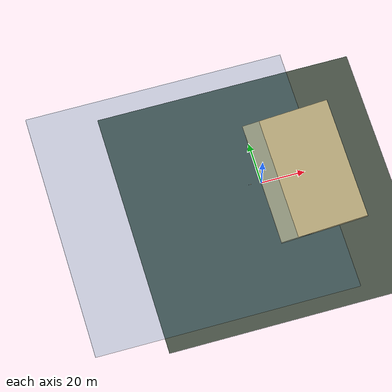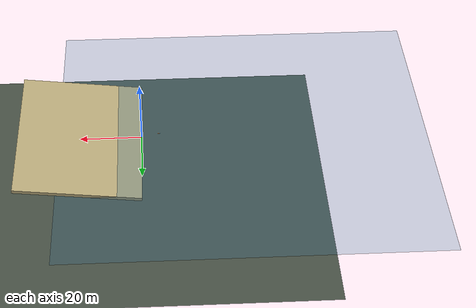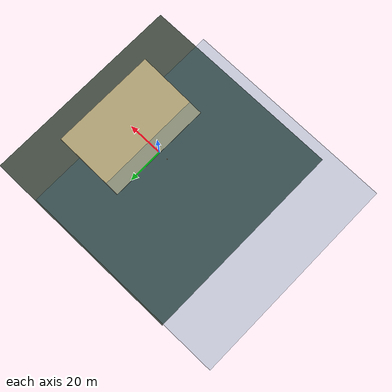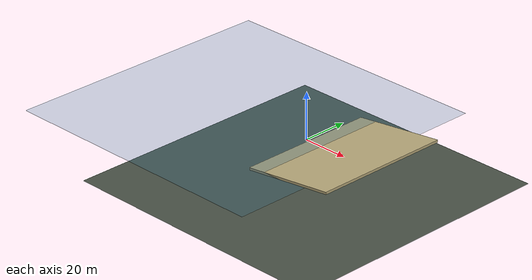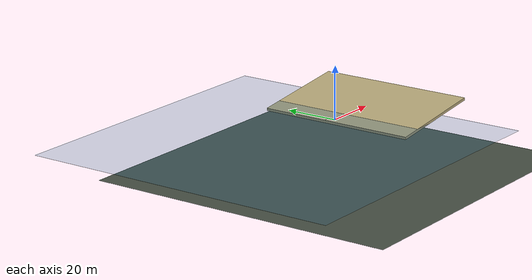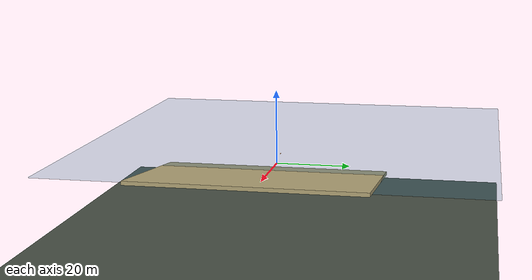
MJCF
<mujoco model="dytiscidae"><option timestep="0.004" gravity="0 0 -9.80665" density="0" viscosity="0" integrator="implicitfast" cone="elliptic" /><compiler angle="radian" autolimits="true" /><visual><global offwidth="1280" offheight="800" /><quality shadowsize="2048" offsamples="4" /><map znear="0.02" zfar="80" /><headlight ambient="0.45 0.46 0.48" diffuse="0.55 0.55 0.55" specular="0.15 0.15 0.15" /></visual><default><geom friction="0.9 0.02 0.001" condim="4" solref="0.008 1" margin="0.001" contype="1" conaffinity="2" /><joint damping="0.05" armature="0.002" limited="true" /></default><asset><texture type="skybox" builtin="gradient" rgb1="0.5 0.7 0.9" rgb2="0.05 0.1 0.2" width="256" height="256" /><texture name="grid" type="2d" builtin="checker" rgb1="0.25 0.28 0.24" rgb2="0.3 0.34 0.29" width="300" height="300" /><material name="seabed" texture="grid" texrepeat="20 20" reflectance="0.05" /><material name="beach" rgba="0.72 0.66 0.48 1" /><material name="water" rgba="0.15 0.4 0.55 0.25" /><mesh name="m0" vertex="-0.0066314 -0.031108 -0.01887 0.0066314 -0.031108 -0.01887 0.0066314 -0.031108 -0.0056069 -0.0066314 -0.031108 -0.0066314 -0.0066314 -0.031108 0.01887 -0.0066314 -0.01887 -0.031108 -0.0066314 -0.0056069 -0.031108 -0.0066314 -0.0056069 -0.017845 -0.0066314 -0.01887 0.0066314 -0.0066314 -0.01887 0.031108 0.0066314 -0.01887 0.031108 -0.0066314 0.0066314 -0.01887 -0.0066314 0.0066314 0.0066314 -0.0066314 0.0066314 0.031108 -0.0066314 0.0056069 -0.031108 -0.0066314 0.01887 -0.031108 0.0066314 0.01887 -0.031108 -0.0066314 0.0056069 -0.0066314 -0.0066314 0.0056069 0.031108 -0.0066314 0.01887 0.017845 -0.0066314 0.01887 0.031108 -0.0066314 0.031108 -0.01887 -0.0066314 0.031108 -0.0066314 -0.0066314 0.031108 0.0066314 -0.0066314 0.031108 0.0056069 -0.0066314 0.031108 0.01887 0.022207 -0.031108 -0.01887 0.0089447 -0.01887 -0.031108 0.022207 -0.01887 -0.031108 0.0089447 -0.01887 0.031108 0.022207 -0.01887 0.031108 0.0089447 0.0066314 0.031108 0.0089447 0.0056069 -0.031108 0.0089447 0.01887 -0.031108 0.022207 0.01887 -0.031108 0.0089447 0.01887 0.031108 0.022207 0.01887 0.031108 0.0089447 0.031108 -0.01887 0.0089447 0.031108 -0.0066314 0.0089447 0.031108 0.0056069 0.022207 0.031108 0.01887 0.037783 -0.031108 -0.01887 0.037783 -0.031108 0.0066314 0.024521 -0.031108 0.01887 0.037783 -0.031108 0.0056069 0.037783 -0.031108 0.01887 0.024521 -0.01887 -0.031108 0.037783 -0.01887 -0.031108 0.037783 -0.01887 -0.01887 0.024521 -0.01887 0.031108 0.024521 -0.0056069 0.031108 0.037783 -0.01887 0.031108 0.037783 -0.0056069 0.031108 0.037783 -0.0066314 -0.031108 0.037783 0.0066314 -0.031108 0.037783 -0.0066314 0.017845 0.037783 -0.0066314 0.031108 0.037783 0.01887 -0.031108 0.037783 0.0056069 0.0066314 0.024521 0.01887 0.031108 0.037783 0.0056069 0.031108 0.037783 0.01887 0.017845 0.037783 0.01887 0.031108 0.024521 0.031108 -0.01887 0.037783 0.031108 -0.01887 0.037783 0.031108 0.0066314 0.024521 0.031108 0.01887 0.037783 0.031108 0.0056069 0.037783 0.031108 0.01887" face="67 65 64 43 4 2 51 45 56 51 43 45 28 26 41 47 28 41 44 43 45 44 41 2 44 43 2 19 9 12 19 20 9 19 20 25 19 25 23 22 25 23 33 32 15 33 34 32 57 37 64 57 37 15 57 34 32 8 9 12 8 7 12 21 22 23 21 37 15 21 22 37 6 32 27 6 32 15 0 8 7 0 4 9 0 8 9 42 45 56 42 44 45 42 47 48 42 47 41 42 44 41 30 51 56 30 29 56 63 65 64 63 37 64 53 57 64 53 64 58 53 47 48 53 42 58 53 42 48 16 33 34 16 57 34 16 33 15 16 57 15 5 6 27 3 4 2 3 0 4 55 42 58 55 42 56 49 51 43 49 30 51 10 13 9 10 13 29 10 49 43 10 30 29 10 49 30 10 4 9 10 43 4 18 20 9 18 13 9 18 13 20 31 13 29 61 62 56 61 67 65 61 55 58 61 55 56 61 64 58 61 67 64 24 19 23 24 11 19 24 21 23 24 11 21 17 19 12 17 11 19 17 7 12 17 11 7 14 11 7 14 0 7 14 6 15 14 5 6 14 5 0 14 21 15 14 11 21 39 22 25 59 40 62 54 53 57 54 53 47 54 32 27 54 57 32 1 41 2 1 3 2 1 3 0 1 26 41 1 28 27 1 28 26 1 5 27 1 5 0 60 62 56 35 13 20 35 31 13 35 20 25 35 60 31 35 40 25 35 59 40 35 60 62 68 61 65 68 61 62 68 40 62 38 63 37 38 39 63 38 22 37 38 39 22 66 40 25 66 39 25 66 39 63 66 63 65 66 68 65 66 68 40 46 28 27 46 54 27 46 47 28 46 54 47 50 31 29 50 60 31 36 59 62 36 35 62 36 35 59 52 60 56 52 50 60 52 29 56 52 50 29" /><mesh name="m1" vertex="0.040097 -0.031108 -0.01887 0.040097 -0.031108 -0.0056069 0.040097 -0.017845 -0.01887 0.05336 -0.031108 -0.01887 0.040097 -0.031108 -0.0066314 0.040097 -0.031108 0.0066314 0.05336 -0.031108 -0.0066314 0.040097 -0.031108 0.01887 0.05336 -0.031108 0.01887 0.040097 -0.01887 -0.031108 0.040097 -0.0056069 -0.031108 0.05336 -0.0056069 -0.031108 0.040097 -0.01887 0.031108 0.05336 -0.01887 0.031108 0.040097 -0.0066314 -0.031108 0.040097 0.0066314 0.031108 0.040097 0.0056069 -0.031108 0.040097 0.01887 -0.031108 0.040097 0.01887 0.031108 0.05336 0.01887 0.031108 0.040097 0.031108 -0.01887 0.040097 0.031108 -0.0056069 0.040097 0.031108 -0.0066314 0.040097 0.031108 0.01887 0.055673 -0.031108 -0.01887 0.068936 -0.031108 0.01887 0.055673 -0.01887 -0.031108 0.068936 -0.01887 -0.031108 0.055673 -0.0066314 -0.031108 0.068936 0.0066314 -0.031108 0.055673 0.0066314 0.031108 0.068936 0.0066314 0.031108 0.055673 0.01887 -0.031108 0.068936 0.031108 -0.01887 0.055673 0.031108 -0.0066314 0.055673 0.031108 0.01887 0.068936 0.031108 0.01887 0.071249 -0.031108 -0.01887 0.084512 -0.031108 -0.01887 0.071249 -0.031108 0.0066314 0.084512 -0.031108 -0.0066314 0.084512 -0.031108 0.0066314 0.084512 -0.031108 0.01887 0.084512 -0.017845 0.01887 0.084512 -0.01887 -0.031108 0.084512 -0.0056069 -0.01887 0.084512 -0.01887 0.031108 0.084512 -0.0056069 0.031108 0.071249 0.01887 -0.031108 0.084512 0.0056069 -0.031108 0.084512 0.01887 -0.031108 0.084512 0.01887 -0.0066314 0.084512 0.0056069 0.01887 0.071249 0.01887 0.031108 0.084512 0.01887 0.031108 0.084512 0.031108 -0.01887 0.084512 0.031108 -0.0056069 0.084512 0.031108 -0.0066314 0.084512 0.031108 0.0066314" face="52 46 45 13 46 12 13 18 12 49 44 45 49 52 45 49 51 52 43 46 45 43 44 45 43 44 46 7 46 12 7 8 46 2 20 12 33 17 20 33 55 56 21 20 12 21 23 12 15 18 12 15 23 12 15 23 18 36 54 18 36 58 54 36 58 56 57 51 52 57 54 52 57 58 54 57 58 56 57 55 56 57 55 50 57 49 50 57 49 51 47 52 46 47 54 52 47 31 46 47 31 54 32 49 50 32 17 29 32 49 29 1 7 12 1 2 12 1 2 0 5 7 8 42 44 46 10 2 20 10 2 0 34 33 20 34 33 56 30 31 46 30 31 18 30 13 46 30 13 18 19 54 18 19 31 18 48 32 50 48 32 17 48 55 50 48 33 55 48 33 17 39 5 8 4 5 7 4 1 0 4 1 7 16 17 20 16 10 20 9 10 0 22 21 20 22 34 20 22 21 23 35 36 56 35 34 56 35 23 18 35 36 18 35 22 23 35 22 34 53 31 54 53 19 54 53 19 31 25 39 8 25 39 42 25 8 46 25 42 46 6 39 37 6 24 37 6 39 5 6 4 5 6 4 0 6 24 0 40 39 37 40 38 37 14 9 10 14 16 17 14 16 10 27 9 44 3 24 37 3 38 44 3 38 37 3 9 0 3 24 0 41 39 42 41 40 39 41 40 38 41 42 44 41 38 44 28 49 29 28 27 9 28 49 44 28 27 44 26 9 44 26 3 44 26 3 9 11 14 9 11 28 9 11 14 17 11 17 29 11 28 29" /><mesh name="m2" vertex="0.071249 0.017845 0.0056069 0.071249 0.017845 0.01887 0.071249 0.031108 0.0056069 0.071249 0.031108 0.01887 0.084512 0.031108 0.01887 0.086825 -0.031108 -0.01887 0.10009 -0.031108 -0.01887 0.086825 -0.031108 0.0066314 0.086825 -0.031108 0.01887 0.10009 -0.031108 0.01887 0.086825 -0.01887 -0.031108 0.086825 -0.0056069 -0.031108 0.10009 -0.01887 -0.031108 0.086825 -0.01887 0.031108 0.086825 -0.0056069 0.031108 0.10009 -0.01887 0.031108 0.086825 -0.0066314 -0.031108 0.086825 -0.0066314 0.031108 0.086825 0.0056069 -0.031108 0.086825 0.01887 -0.031108 0.10009 0.01887 -0.031108 0.086825 0.01887 0.031108 0.10009 0.01887 0.031108 0.086825 0.031108 -0.01887 0.10009 0.031108 -0.01887 0.10009 0.031108 -0.0056069 0.10009 0.031108 0.01887 0.11798 -0.031108 -0.0066314 0.11798 -0.0066314 -0.031108 0.13124 0.031108 0.0066314 0.13355 -0.031108 0.0066314 0.14682 -0.031108 -0.0066314 0.14682 -0.031108 0.0066314 0.14682 -0.01887 0.01887 0.13355 -0.0066314 -0.031108 0.14682 -0.0066314 -0.031108 0.14682 0.0066314 -0.031108 0.14682 -0.0066314 0.031108 0.14682 0.0066314 0.031108 0.13355 0.031108 -0.0066314 0.14682 0.031108 -0.0066314 0.14682 0.031108 0.0066314 0.16239 -0.01887 -0.01887 0.16239 -0.01887 -0.0056069 0.16239 -0.0056069 -0.01887 0.16239 -0.0056069 -0.0056069" face="7 5 0 7 5 8 10 5 0 27 5 8 1 13 8 1 7 0 1 7 8 31 27 8 31 27 5 28 10 16 9 32 8 20 23 24 20 28 16 20 28 36 22 14 38 22 14 21 3 22 21 3 2 0 3 1 0 3 1 13 30 32 8 30 31 8 30 31 32 15 9 32 15 37 32 15 13 8 15 9 8 15 14 13 15 37 38 15 14 38 18 2 0 18 20 16 19 20 23 19 23 2 19 18 20 19 18 2 17 14 13 17 3 13 17 14 21 17 3 21 43 31 32 43 42 31 43 42 45 43 38 45 43 37 38 44 42 45 44 42 36 35 42 36 6 31 5 6 42 31 6 10 5 11 10 0 11 18 0 11 10 16 11 18 16 4 22 26 4 3 22 4 3 2 4 23 2 4 25 23 41 38 45 41 22 38 41 22 26 41 4 26 33 37 32 33 43 32 33 43 37 34 28 36 34 35 36 34 28 10 34 35 10 12 35 10 12 35 42 12 6 10 12 6 42 40 20 24 40 23 24 40 20 36 40 44 36 40 44 45 40 41 45 39 25 23 39 40 23 39 4 25 39 40 41 29 41 4 29 39 4 29 39 41" /><mesh name="m3" vertex="0.14913 -0.01887 -0.0066314 0.16239 -0.01887 -0.0066314 0.16239 -0.01887 0.0066314 0.14913 -0.01887 0.0056069 0.14913 -0.01887 0.01887 0.14913 -0.0066314 -0.01887 0.14913 0.0066314 -0.01887 0.16239 0.0066314 -0.01887 0.14913 0.0066314 0.0066314 0.14913 0.0066314 0.01887 0.14913 0.0056069 -0.01887 0.14913 0.0056069 -0.0056069 0.14913 0.01887 -0.01887 0.14913 0.01887 -0.0056069 0.14913 0.01887 0.0066314 0.14913 0.0056069 0.01887 0.14913 0.01887 0.01887 0.16239 0.01887 0.01887 0.16471 -0.01887 -0.01887 0.16471 -0.01887 0.01887 0.16471 0.01887 -0.01887 0.16471 0.01887 -0.0056069 0.17797 0.01887 -0.01887 0.17797 0.01887 -0.0066314 0.16471 0.0056069 0.01887 0.17797 0.01887 0.01887 0.18028 -0.01887 -0.01887 0.19354 -0.01887 0.01887 0.19354 -0.0066314 -0.01887 0.18028 0.01887 0.0066314 0.18028 0.0056069 0.01887 0.18028 0.01887 0.01887 0.21143 -0.01887 -0.01887 0.2247 -0.01887 -0.01887 0.2247 -0.01887 0.01887 0.21143 -0.0066314 0.01887 0.21143 0.01887 -0.01887 0.2247 0.01887 -0.01887 0.24027 -0.01887 -0.01887 0.22701 0.0066314 -0.01887 0.22701 0.0066314 0.01887 0.22701 0.01887 -0.01887 0.22701 0.01887 0.01887 0.24027 0.01887 0.0056069 0.24259 -0.01887 -0.01887 0.25585 -0.01887 -0.01887 0.25585 -0.01887 -0.0056069 0.25585 -0.0056069 -0.01887 0.25585 -0.01887 -0.0066314 0.24259 -0.01887 0.01887 0.25585 -0.01887 0.0056069 0.25585 -0.01887 0.01887 0.25585 -0.0066314 -0.01887 0.25585 -0.0066314 0.0066314 0.25585 -0.0066314 0.01887 0.25585 0.0066314 0.01887 0.24259 0.0056069 -0.01887 0.25585 0.01887 -0.01887 0.24259 0.01887 -0.0066314 0.24259 0.0056069 0.01887 0.25585 0.01887 0.01887" face="60 57 53 48 57 53 43 60 57 27 19 2 42 43 60 44 45 47 0 6 5 1 26 2 52 45 47 52 48 45 52 57 47 52 48 57 51 19 34 51 27 19 51 48 53 51 60 53 51 54 60 55 54 60 55 42 60 30 4 19 33 44 45 33 44 47 33 28 47 33 28 26 18 26 5 18 0 5 18 1 26 18 1 0 11 0 8 11 0 6 11 12 8 11 12 6 3 1 2 3 19 2 3 1 0 3 4 19 3 0 4 49 54 34 49 51 34 49 51 54 10 6 5 10 12 5 10 12 6 7 28 26 7 26 5 7 12 5 40 30 42 40 30 19 15 16 4 15 0 8 15 0 4 56 28 47 56 57 47 56 7 28 56 7 39 46 48 45 50 51 48 50 26 2 50 51 27 50 46 45 50 46 48 50 27 2 58 43 57 29 42 43 29 23 43 59 55 42 59 40 42 59 55 54 59 40 54 35 54 34 35 40 54 35 19 34 35 40 19 25 30 42 25 17 42 25 17 30 9 16 4 9 17 4 9 17 16 24 30 4 24 17 4 24 17 30 38 50 45 38 33 45 38 33 26 37 7 12 37 7 39 37 56 57 37 56 39 20 13 12 41 23 43 41 36 23 41 58 43 41 37 36 41 58 57 41 37 57 31 29 42 31 29 16 31 17 42 31 17 16 21 29 23 21 20 13 21 36 23 21 20 36 32 50 26 32 38 26 32 38 50 22 20 12 22 20 36 22 37 12 22 37 36 14 29 16 14 21 29 14 21 13 14 15 16 14 13 12 14 15 8 14 12 8" /></asset><worldbody><light pos="4 -6 14" dir="-0.2 0.4 -1" diffuse="0.85 0.85 0.82" specular="0.2 0.2 0.2" castshadow="true" /><light pos="-8 8 3" dir="0.5 -0.5 -0.2" diffuse="0.30 0.34 0.38" castshadow="false" /><geom name="seabed" type="plane" pos="0 0 -18.0" size="60 60 0.5" material="seabed" contype="2" conaffinity="1" /><geom name="beach" type="box" pos="19.943 0 0.953162" quat="0.998218 0 -0.059679 0" size="20 30 0.5" material="beach" contype="2" conaffinity="1" /><geom name="waterplane" type="box" pos="-33 0 0" size="60 60 0.004" material="water" contype="0" conaffinity="0" group="2" /><body name="seg0_hull" pos="-6 0 1.5"><freejoint name="root" /><geom name="seg0_hull_g1" type="mesh" mesh="m0" mass="0.442957" rgba="0.25 0.28 0.32 1" /><geom name="seg0_hull_g2" type="mesh" mesh="m1" mass="0.442957" rgba="0.25 0.28 0.32 1" /><geom name="seg0_hull_g3" type="mesh" mesh="m2" mass="0.442957" rgba="0.25 0.28 0.32 1" /><geom name="seg0_hull_g4" type="mesh" mesh="m3" mass="0.442957" rgba="0.25 0.28 0.32 1" /><body name="seg1_wing" pos="0.227429 0 0" quat="0.136333 0.990031 0.0299496 -0.0188554"><joint name="seg1_wing_j" type="hinge" axis="0 0 1" range="-0.75 0.75" damping="0.0264812" armature="0.000129623" /><geom name="seg1_wing_g" type="box" pos="0.0945327 -0.0197662 0" size="0.0945327 0.0395323 0.00256857" mass="0.0731195" rgba="0.85 0.5 0.2 0.9" /><body name="seg2_wing" pos="0.189065 0 0" quat="0 1 3.06162e-17 0"><joint name="seg2_wing_j" type="hinge" axis="0 0 1" range="-0.75 0.75" damping="0.0251328" armature="0.000102657" /><geom name="seg2_wing_g" type="box" pos="0.08697 -0.0181849 0" size="0.08697 0.0363697 0.00236309" mass="0.0656103" rgba="0.85 0.5 0.2 0.9" /><body name="seg3_wing" pos="0.17394 0 0" quat="0 1 3.06162e-17 0"><joint name="seg3_wing_j" type="hinge" axis="0 0 1" range="-0.75 0.75" damping="0.0240697" armature="0.0001" /><geom name="seg3_wing_g" type="box" pos="0.0800124 -0.0167301 0" size="0.0800124 0.0334602 0.00217404" mass="0.0590564" rgba="0.85 0.5 0.2 0.9" /><body name="seg4_wing" pos="0.160025 0 0" quat="0 1 3.06162e-17 0"><joint name="seg4_wing_j" type="hinge" axis="0 0 1" range="-0.75 0.75" damping="0.0232307" armature="0.0001" /><geom name="seg4_wing_g" type="box" pos="0.0736114 -0.0153917 0" size="0.0736114 0.0307833 0.00200012" mass="0.0564613" rgba="0.85 0.5 0.2 0.9" /><body name="seg5_wing" pos="0.147223 0 0" quat="0 1 3.06162e-17 0"><joint name="seg5_wing_j" type="hinge" axis="0 0 1" range="-0.75 0.75" damping="0.0225679" armature="0.0001" /><geom name="seg5_wing_g" type="box" pos="0.0677225 -0.0141603 0" size="0.0677225 0.0283207 0.002" mass="0.0551357" rgba="0.85 0.5 0.2 0.9" /></body></body></body></body></body><body name="seg6_wing" pos="0.227429 0 0" quat="0.136333 0.990031 -0.0299496 0.0188554"><joint name="seg6_wing_j" type="hinge" axis="0 0 1" range="-0.75 0.75" damping="0.0264812" armature="0.000129623" /><geom name="seg6_wing_g" type="box" pos="0.0945327 -0.0197662 0" size="0.0945327 0.0395323 0.00256857" mass="0.0731195" rgba="0.85 0.5 0.2 0.9" /><body name="seg7_wing" pos="0.189065 0 0" quat="0 1 3.06162e-17 0"><joint name="seg7_wing_j" type="hinge" axis="0 0 1" range="-0.75 0.75" damping="0.0251328" armature="0.000102657" /><geom name="seg7_wing_g" type="box" pos="0.08697 -0.0181849 0" size="0.08697 0.0363697 0.00236309" mass="0.0656103" rgba="0.85 0.5 0.2 0.9" /><body name="seg8_wing" pos="0.17394 0 0" quat="0 1 3.06162e-17 0"><joint name="seg8_wing_j" type="hinge" axis="0 0 1" range="-0.75 0.75" damping="0.0240697" armature="0.0001" /><geom name="seg8_wing_g" type="box" pos="0.0800124 -0.0167301 0" size="0.0800124 0.0334602 0.00217404" mass="0.0590564" rgba="0.85 0.5 0.2 0.9" /><body name="seg9_wing" pos="0.160025 0 0" quat="0 1 3.06162e-17 0"><joint name="seg9_wing_j" type="hinge" axis="0 0 1" range="-0.75 0.75" damping="0.0232307" armature="0.0001" /><geom name="seg9_wing_g" type="box" pos="0.0736114 -0.0153917 0" size="0.0736114 0.0307833 0.00200012" mass="0.0564613" rgba="0.85 0.5 0.2 0.9" /><body name="seg10_wing" pos="0.147223 0 0" quat="0 1 3.06162e-17 0"><joint name="seg10_wing_j" type="hinge" axis="0 0 1" range="-0.75 0.75" damping="0.0225679" armature="0.0001" /><geom name="seg10_wing_g" type="box" pos="0.0677225 -0.0141603 0" size="0.0677225 0.0283207 0.002" mass="0.0551357" rgba="0.85 0.5 0.2 0.9" /></body></body></body></body></body><body name="seg11_membrane" pos="0.110491 0 0" quat="-0.0636753 0.904889 0.394733 0.14597"><joint name="seg11_membrane_j" type="hinge" axis="0.0203273 -0.937914 0.346273" range="-1.08014 1.37719" damping="0.0218665" armature="0.0001" /><geom name="seg11_membrane_g" type="box" pos="0.139106 -0.0164425 0" size="0.139106 0.032885 0.00213667" mass="0.023733" rgba="0.3 0.6 0.8 0.9" /></body><body name="seg12_membrane" pos="0.0575161 0 0" quat="0.0110893 0.835243 0.54951 -0.0168554"><joint name="seg12_membrane_j" type="hinge" axis="0.0203273 -0.937914 0.346273" range="-1.08014 1.37719" damping="0.0210693" armature="0.0001" /><geom name="seg12_membrane_g" type="box" pos="0.100061 -0.0130952 0" size="0.100061 0.0261903 0.002" mass="0.0221385" rgba="0.3 0.6 0.8 0.9" /></body></body></worldbody><actuator><position name="seg1_wing_a" joint="seg1_wing_j" kp="10.2635" kv="0.769762" forcerange="-5.13175 5.13175" ctrlrange="-3.2 3.2" /><position name="seg2_wing_a" joint="seg2_wing_j" kp="9.24762" kv="0.693571" forcerange="-4.62381 4.62381" ctrlrange="-3.2 3.2" /><position name="seg3_wing_a" joint="seg3_wing_j" kp="8.3323" kv="0.624922" forcerange="-4.16615 4.16615" ctrlrange="-3.2 3.2" /><position name="seg4_wing_a" joint="seg4_wing_j" kp="8.14514" kv="0.610886" forcerange="-4.07257 4.07257" ctrlrange="-3.2 3.2" /><position name="seg5_wing_a" joint="seg5_wing_j" kp="8.14514" kv="0.610886" forcerange="-4.07257 4.07257" ctrlrange="-3.2 3.2" /><position name="seg6_wing_a" joint="seg6_wing_j" kp="10.2635" kv="0.769762" forcerange="-5.13175 5.13175" ctrlrange="-3.2 3.2" /><position name="seg7_wing_a" joint="seg7_wing_j" kp="9.24762" kv="0.693571" forcerange="-4.62381 4.62381" ctrlrange="-3.2 3.2" /><position name="seg8_wing_a" joint="seg8_wing_j" kp="8.3323" kv="0.624922" forcerange="-4.16615 4.16615" ctrlrange="-3.2 3.2" /><position name="seg9_wing_a" joint="seg9_wing_j" kp="8.14514" kv="0.610886" forcerange="-4.07257 4.07257" ctrlrange="-3.2 3.2" /><position name="seg10_wing_a" joint="seg10_wing_j" kp="8.14514" kv="0.610886" forcerange="-4.07257 4.07257" ctrlrange="-3.2 3.2" /><position name="seg11_membrane_a" joint="seg11_membrane_j" kp="0.172075" kv="0.0129056" forcerange="-0.0860376 0.0860376" ctrlrange="-3.2 3.2" /><position name="seg12_membrane_a" joint="seg12_membrane_j" kp="0.172075" kv="0.0129056" forcerange="-0.0860376 0.0860376" ctrlrange="-3.2 3.2" /></actuator><sensor><framepos name="root_pos" objtype="body" objname="seg0_hull" /><framequat name="root_quat" objtype="body" objname="seg0_hull" /><framelinvel name="root_linvel" objtype="body" objname="seg0_hull" /><frameangvel name="root_angvel" objtype="body" objname="seg0_hull" /></sensor></mujoco>
